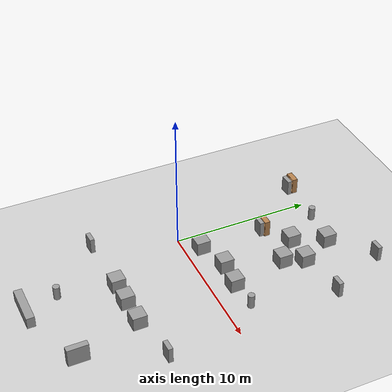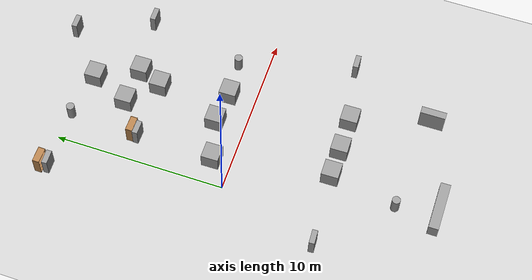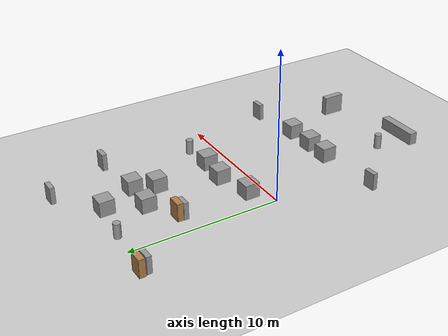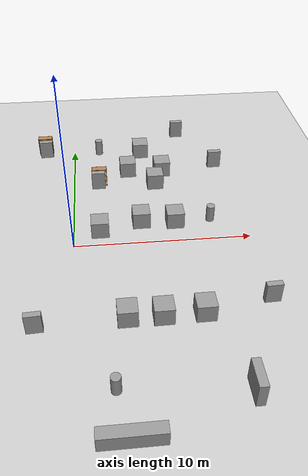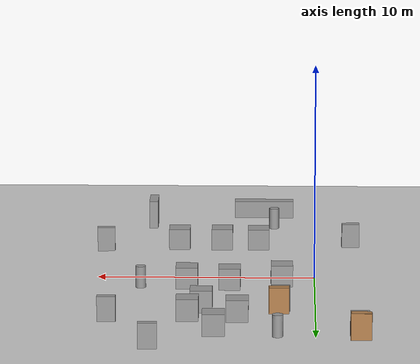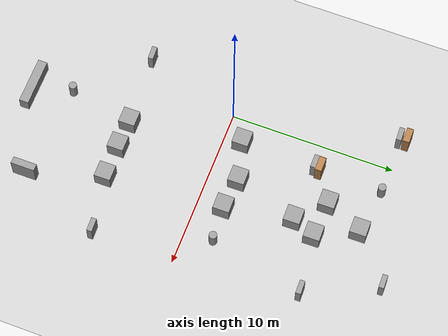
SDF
<sdf version="1.6">
 <world name="default">
  <light name="sun" type="directional">
   <pose>0 0 10 0 -0 0</pose>
   <diffuse>0.8 0.8 0.8 1</diffuse>
   <specular>0.2 0.2 0.2 1</specular>
   <attenuation>
    <range>1000</range>
    <constant>0.9</constant>
    <linear>0.01</linear>
    <quadratic>0.001</quadratic>
   </attenuation>
   <direction>-0.5 0.1 -0.9</direction>
  </light>
  <model name="ground_plane">
   <static>1</static>
   <link name="link">
    <collision name="collision">
     <geometry><plane><normal>0 0 1</normal><size>100 100</size></plane></geometry>
     <surface><friction><ode><mu>100</mu><mu2>50</mu2></ode></friction></surface>
    </collision>
    <visual name="visual">
     <cast_shadows>0</cast_shadows>
     <geometry><plane><normal>0 0 1</normal><size>100 100</size></plane></geometry>
     <material>
      <script><uri>file://media/materials/scripts/gazebo.material</uri><name>Gazebo/Grey</name></script>
     </material>
    </visual>
   </link>
  </model>
  <gravity>0 0 -9.8</gravity>
  <magnetic_field>6e-06 2.3e-05 -4.2e-05</magnetic_field>
  <atmosphere type="adiabatic"/>
  <physics name="default_physics" default="0" type="ode">
   <max_step_size>0.001</max_step_size>
   <real_time_factor>1</real_time_factor>
   <real_time_update_rate>1000</real_time_update_rate>
  </physics>
  <scene><ambient>0.4 0.4 0.4 1</ambient><background>0.7 0.7 0.7 1</background><shadows>1</shadows></scene>
  <spherical_coordinates>
   <surface_model>EARTH_WGS84</surface_model>
   <latitude_deg>0</latitude_deg>
   <longitude_deg>0</longitude_deg>
   <elevation>0</elevation>
   <heading_deg>0</heading_deg>
  </spherical_coordinates>
  <light name="user_directional_light_0" type="directional">
   <pose>2.09559 -1.53407 1 0 -0 0</pose>
   <diffuse>0.5 0.5 0.5 1</diffuse>
   <specular>0.1 0.1 0.1 1</specular>
   <direction>0.1 0.1 -0.9</direction>
   <attenuation>
    <range>20</range>
    <constant>0.5</constant>
    <linear>0.01</linear>
    <quadratic>0.001</quadratic>
   </attenuation>
  </light>
  <light name="user_point_light_0" type="point">
   <pose>-0.118109 0.866848 1 0 -0 0</pose>
   <diffuse>0.5 0.5 0.5 1</diffuse>
   <specular>0.1 0.1 0.1 1</specular>
   <attenuation>
    <range>20</range>
    <constant>0.5</constant>
    <linear>0.01</linear>
    <quadratic>0.001</quadratic>
   </attenuation>
   <cast_shadows>0</cast_shadows>
   <direction>0 0 -1</direction>
  </light>
  <light name="user_directional_light_1" type="directional">
   <pose>1.80972 -1.34508 1 0 -0 0</pose>
   <diffuse>0.5 0.5 0.5 1</diffuse>
   <specular>0.1 0.1 0.1 1</specular>
   <direction>0.1 0.1 -0.9</direction>
   <attenuation>
    <range>20</range>
    <constant>0.5</constant>
    <linear>0.01</linear>
    <quadratic>0.001</quadratic>
   </attenuation>
  </light>
  <light name="user_spot_light_0" type="spot">
   <pose>-0.568595 0.777163 1 0 -0 0</pose>
   <diffuse>0.5 0.5 0.5 1</diffuse>
   <specular>0.1 0.1 0.1 1</specular>
   <direction>0 0 -1</direction>
   <attenuation>
    <range>20</range>
    <constant>0.5</constant>
    <linear>0.01</linear>
    <quadratic>0.001</quadratic>
   </attenuation>
   <cast_shadows>0</cast_shadows>
   <spot><inner_angle>0.6</inner_angle><outer_angle>1</outer_angle><falloff>1</falloff></spot>
  </light>
  <model name="bookshelf_clone">
   <static>1</static>
   <link name="link">
    <inertial><mass>1</mass></inertial>
    <collision name="back">
     <pose>0 0.005 0.6 0 -0 0</pose>
     <geometry><box><size>0.9 0.01 1.2</size></box></geometry>
    </collision>
    <visual name="visual1">
     <pose>0 0.005 0.6 0 -0 0</pose>
     <geometry><box><size>0.9 0.01 1.2</size></box></geometry>
     <material>
      <script><uri>file://media/materials/scripts/gazebo.material</uri><name>Gazebo/Wood</name></script>
     </material>
    </visual>
    <collision name="left_side">
     <pose>0.45 -0.195 0.6 0 -0 0</pose>
     <geometry><box><size>0.02 0.4 1.2</size></box></geometry>
    </collision>
    <visual name="visual2">
     <pose>0.45 -0.195 0.6 0 -0 0</pose>
     <geometry><box><size>0.02 0.4 1.2</size></box></geometry>
     <material>
      <script><uri>file://media/materials/scripts/gazebo.material</uri><name>Gazebo/Wood</name></script>
     </material>
    </visual>
    <collision name="right_side">
     <pose>-0.45 -0.195 0.6 0 -0 0</pose>
     <geometry><box><size>0.02 0.4 1.2</size></box></geometry>
    </collision>
    <visual name="visual3">
     <pose>-0.45 -0.195 0.6 0 -0 0</pose>
     <geometry><box><size>0.02 0.4 1.2</size></box></geometry>
     <material>
      <script><uri>file://media/materials/scripts/gazebo.material</uri><name>Gazebo/Wood</name></script>
     </material>
    </visual>
    <collision name="bottom">
     <pose>0 -0.195 0.03 0 -0 0</pose>
     <geometry><box><size>0.88 0.4 0.06</size></box></geometry>
    </collision>
    <visual name="visual4">
     <pose>0 -0.195 0.03 0 -0 0</pose>
     <geometry><box><size>0.88 0.4 0.06</size></box></geometry>
     <material>
      <script><uri>file://media/materials/scripts/gazebo.material</uri><name>Gazebo/Wood</name></script>
     </material>
    </visual>
    <collision name="top">
     <pose>0 -0.195 1.19 0 -0 0</pose>
     <geometry><box><size>0.88 0.4 0.02</size></box></geometry>
    </collision>
    <visual name="visual5">
     <pose>0 -0.195 1.19 0 -0 0</pose>
     <geometry><box><size>0.88 0.4 0.02</size></box></geometry>
     <material>
      <script><uri>file://media/materials/scripts/gazebo.material</uri><name>Gazebo/Wood</name></script>
     </material>
    </visual>
    <collision name="low_shelf">
     <pose>0 -0.195 0.43 0 -0 0</pose>
     <geometry><box><size>0.88 0.4 0.02</size></box></geometry>
    </collision>
    <visual name="visual6">
     <pose>0 -0.195 0.43 0 -0 0</pose>
     <geometry><box><size>0.88 0.4 0.02</size></box></geometry>
     <material>
      <script><uri>file://media/materials/scripts/gazebo.material</uri><name>Gazebo/Wood</name></script>
     </material>
    </visual>
    <collision name="high_shelf">
     <pose>0 -0.195 0.8 0 -0 0</pose>
     <geometry><box><size>0.88 0.4 0.02</size></box></geometry>
    </collision>
    <visual name="visual7">
     <pose>0 -0.195 0.8 0 -0 0</pose>
     <geometry><box><size>0.88 0.4 0.02</size></box></geometry>
     <material>
      <script><uri>file://media/materials/scripts/gazebo.material</uri><name>Gazebo/Wood</name></script>
     </material>
    </visual>
   </link>
   <pose>1.61723 6.21333 0 0 -0 0</pose>
  </model>
  <model name="bookshelf_clone_1">
   <static>1</static>
   <link name="link">
    <inertial><mass>1</mass></inertial>
    <collision name="back">
     <pose>0 0.005 0.6 0 -0 0</pose>
     <geometry><box><size>0.9 0.01 1.2</size></box></geometry>
    </collision>
    <visual name="visual1">
     <pose>0 0.005 0.6 0 -0 0</pose>
     <geometry><box><size>0.9 0.01 1.2</size></box></geometry>
     <material>
      <script><uri>file://media/materials/scripts/gazebo.material</uri><name>Gazebo/Wood</name></script>
     </material>
    </visual>
    <collision name="left_side">
     <pose>0.45 -0.195 0.6 0 -0 0</pose>
     <geometry><box><size>0.02 0.4 1.2</size></box></geometry>
    </collision>
    <visual name="visual2">
     <pose>0.45 -0.195 0.6 0 -0 0</pose>
     <geometry><box><size>0.02 0.4 1.2</size></box></geometry>
     <material>
      <script><uri>file://media/materials/scripts/gazebo.material</uri><name>Gazebo/Wood</name></script>
     </material>
    </visual>
    <collision name="right_side">
     <pose>-0.45 -0.195 0.6 0 -0 0</pose>
     <geometry><box><size>0.02 0.4 1.2</size></box></geometry>
    </collision>
    <visual name="visual3">
     <pose>-0.45 -0.195 0.6 0 -0 0</pose>
     <geometry><box><size>0.02 0.4 1.2</size></box></geometry>
     <material>
      <script><uri>file://media/materials/scripts/gazebo.material</uri><name>Gazebo/Wood</name></script>
     </material>
    </visual>
    <collision name="bottom">
     <pose>0 -0.195 0.03 0 -0 0</pose>
     <geometry><box><size>0.88 0.4 0.06</size></box></geometry>
    </collision>
    <visual name="visual4">
     <pose>0 -0.195 0.03 0 -0 0</pose>
     <geometry><box><size>0.88 0.4 0.06</size></box></geometry>
     <material>
      <script><uri>file://media/materials/scripts/gazebo.material</uri><name>Gazebo/Wood</name></script>
     </material>
    </visual>
    <collision name="top">
     <pose>0 -0.195 1.19 0 -0 0</pose>
     <geometry><box><size>0.88 0.4 0.02</size></box></geometry>
    </collision>
    <visual name="visual5">
     <pose>0 -0.195 1.19 0 -0 0</pose>
     <geometry><box><size>0.88 0.4 0.02</size></box></geometry>
     <material>
      <script><uri>file://media/materials/scripts/gazebo.material</uri><name>Gazebo/Wood</name></script>
     </material>
    </visual>
    <collision name="low_shelf">
     <pose>0 -0.195 0.43 0 -0 0</pose>
     <geometry><box><size>0.88 0.4 0.02</size></box></geometry>
    </collision>
    <visual name="visual6">
     <pose>0 -0.195 0.43 0 -0 0</pose>
     <geometry><box><size>0.88 0.4 0.02</size></box></geometry>
     <material>
      <script><uri>file://media/materials/scripts/gazebo.material</uri><name>Gazebo/Wood</name></script>
     </material>
    </visual>
    <collision name="high_shelf">
     <pose>0 -0.195 0.8 0 -0 0</pose>
     <geometry><box><size>0.88 0.4 0.02</size></box></geometry>
    </collision>
    <visual name="visual7">
     <pose>0 -0.195 0.8 0 -0 0</pose>
     <geometry><box><size>0.88 0.4 0.02</size></box></geometry>
     <material>
      <script><uri>file://media/materials/scripts/gazebo.material</uri><name>Gazebo/Wood</name></script>
     </material>
    </visual>
   </link>
   <pose>-1.95504 10.3984 0 0 -0 0</pose>
  </model>
  <model name="unit_box">
   <pose>1.50781 1.11708 0.499995 0 -1e-05 0.011339</pose>
   <link name="link">
    <inertial>
     <mass>1</mass>
     <inertia>
      <ixx>0.166667</ixx>
      <ixy>0</ixy>
      <ixz>0</ixz>
      <iyy>0.166667</iyy>
      <iyz>0</iyz>
      <izz>0.166667</izz>
     </inertia>
    </inertial>
    <collision name="collision"><geometry><box><size>1 1 1</size></box></geometry></collision>
    <visual name="visual">
     <geometry><box><size>1 1 1</size></box></geometry>
     <material>
      <script><name>Gazebo/Grey</name><uri>file://media/materials/scripts/gazebo.material</uri></script>
     </material>
    </visual>
   </link>
  </model>
  <model name="unit_box_clone">
   <pose>3.90117 1.76013 0.499995 -0 1e-05 0.011339</pose>
   <link name="link">
    <inertial>
     <mass>1</mass>
     <inertia>
      <ixx>0.166667</ixx>
      <ixy>0</ixy>
      <ixz>0</ixz>
      <iyy>0.166667</iyy>
      <iyz>0</iyz>
      <izz>0.166667</izz>
     </inertia>
    </inertial>
    <collision name="collision"><geometry><box><size>1 1 1</size></box></geometry></collision>
    <visual name="visual">
     <geometry><box><size>1 1 1</size></box></geometry>
     <material>
      <script><name>Gazebo/Grey</name><uri>file://media/materials/scripts/gazebo.material</uri></script>
     </material>
    </visual>
   </link>
  </model>
  <model name="unit_box_clone_0">
   <pose>5.85639 1.57831 0.499995 -1e-05 -0 0.011339</pose>
   <link name="link">
    <inertial>
     <mass>1</mass>
     <inertia>
      <ixx>0.166667</ixx>
      <ixy>0</ixy>
      <ixz>0</ixz>
      <iyy>0.166667</iyy>
      <iyz>0</iyz>
      <izz>0.166667</izz>
     </inertia>
    </inertial>
    <collision name="collision"><geometry><box><size>1 1 1</size></box></geometry></collision>
    <visual name="visual">
     <geometry><box><size>1 1 1</size></box></geometry>
     <material>
      <script><name>Gazebo/Grey</name><uri>file://media/materials/scripts/gazebo.material</uri></script>
     </material>
    </visual>
   </link>
  </model>
  <model name="unit_box_clone_1">
   <pose>5.09767 5.62599 0.499995 -1e-05 -0 0.011339</pose>
   <link name="link">
    <inertial>
     <mass>1</mass>
     <inertia>
      <ixx>0.166667</ixx>
      <ixy>0</ixy>
      <ixz>0</ixz>
      <iyy>0.166667</iyy>
      <iyz>0</iyz>
      <izz>0.166667</izz>
     </inertia>
    </inertial>
    <collision name="collision"><geometry><box><size>1 1 1</size></box></geometry></collision>
    <visual name="visual">
     <geometry><box><size>1 1 1</size></box></geometry>
     <material>
      <script><name>Gazebo/Grey</name><uri>file://media/materials/scripts/gazebo.material</uri></script>
     </material>
    </visual>
   </link>
  </model>
  <model name="unit_box_clone_2">
   <pose>4.46432 9.44166 0.499995 -0 1e-05 0.011339</pose>
   <link name="link">
    <inertial>
     <mass>1</mass>
     <inertia>
      <ixx>0.166667</ixx>
      <ixy>0</ixy>
      <ixz>0</ixz>
      <iyy>0.166667</iyy>
      <iyz>0</iyz>
      <izz>0.166667</izz>
     </inertia>
    </inertial>
    <collision name="collision"><geometry><box><size>1 1 1</size></box></geometry></collision>
    <visual name="visual">
     <geometry><box><size>1 1 1</size></box></geometry>
     <material>
      <script><name>Gazebo/Grey</name><uri>file://media/materials/scripts/gazebo.material</uri></script>
     </material>
    </visual>
   </link>
  </model>
  <model name="unit_box_clone_3">
   <pose>2.64165 -5.60081 0.499995 -1e-05 -0 0.011339</pose>
   <link name="link">
    <inertial>
     <mass>1</mass>
     <inertia>
      <ixx>0.166667</ixx>
      <ixy>0</ixy>
      <ixz>0</ixz>
      <iyy>0.166667</iyy>
      <iyz>0</iyz>
      <izz>0.166667</izz>
     </inertia>
    </inertial>
    <collision name="collision"><geometry><box><size>1 1 1</size></box></geometry></collision>
    <visual name="visual">
     <geometry><box><size>1 1 1</size></box></geometry>
     <material>
      <script><name>Gazebo/Grey</name><uri>file://media/materials/scripts/gazebo.material</uri></script>
     </material>
    </visual>
   </link>
  </model>
  <model name="unit_box_clone_4">
   <pose>4.37603 -5.62358 0.499995 -0 1e-05 0.011339</pose>
   <link name="link">
    <inertial>
     <mass>1</mass>
     <inertia>
      <ixx>0.166667</ixx>
      <ixy>0</ixy>
      <ixz>0</ixz>
      <iyy>0.166667</iyy>
      <iyz>0</iyz>
      <izz>0.166667</izz>
     </inertia>
    </inertial>
    <collision name="collision"><geometry><box><size>1 1 1</size></box></geometry></collision>
    <visual name="visual">
     <geometry><box><size>1 1 1</size></box></geometry>
     <material>
      <script><name>Gazebo/Grey</name><uri>file://media/materials/scripts/gazebo.material</uri></script>
     </material>
    </visual>
   </link>
  </model>
  <model name="unit_box_clone_5">
   <pose>6.4085 -5.59776 0.499995 -1e-05 -0 0.011339</pose>
   <link name="link">
    <inertial>
     <mass>1</mass>
     <inertia>
      <ixx>0.166667</ixx>
      <ixy>0</ixy>
      <ixz>0</ixz>
      <iyy>0.166667</iyy>
      <iyz>0</iyz>
      <izz>0.166667</izz>
     </inertia>
    </inertial>
    <collision name="collision"><geometry><box><size>1 1 1</size></box></geometry></collision>
    <visual name="visual">
     <geometry><box><size>1 1 1</size></box></geometry>
     <material>
      <script><name>Gazebo/Grey</name><uri>file://media/materials/scripts/gazebo.material</uri></script>
     </material>
    </visual>
   </link>
  </model>
  <model name="unit_box_clone_6">
   <pose>3.46753 7.16068 0.499995 -0 1e-05 0.011339</pose>
   <link name="link">
    <inertial>
     <mass>1</mass>
     <inertia>
      <ixx>0.166667</ixx>
      <ixy>0</ixy>
      <ixz>0</ixz>
      <iyy>0.166667</iyy>
      <iyz>0</iyz>
      <izz>0.166667</izz>
     </inertia>
    </inertial>
    <collision name="collision"><geometry><box><size>1 1 1</size></box></geometry></collision>
    <visual name="visual">
     <geometry><box><size>1 1 1</size></box></geometry>
     <material>
      <script><name>Gazebo/Grey</name><uri>file://media/materials/scripts/gazebo.material</uri></script>
     </material>
    </visual>
   </link>
  </model>
  <model name="unit_box_clone_7">
   <pose>5.67887 7.03925 0.499995 -1e-05 -0 0.011339</pose>
   <link name="link">
    <inertial>
     <mass>1</mass>
     <inertia>
      <ixx>0.166667</ixx>
      <ixy>0</ixy>
      <ixz>0</ixz>
      <iyy>0.166667</iyy>
      <iyz>0</iyz>
      <izz>0.166667</izz>
     </inertia>
    </inertial>
    <collision name="collision"><geometry><box><size>1 1 1</size></box></geometry></collision>
    <visual name="visual">
     <geometry><box><size>1 1 1</size></box></geometry>
     <material>
      <script><name>Gazebo/Grey</name><uri>file://media/materials/scripts/gazebo.material</uri></script>
     </material>
    </visual>
   </link>
  </model>
  <model name="unit_cylinder">
   <pose>1.66767 9.84232 0.5 0 0 -2.6e-05</pose>
   <link name="link">
    <inertial>
     <mass>1</mass>
     <inertia><ixx>0.145833</ixx><ixy>0</ixy><ixz>0</ixz><iyy>0.145833</iyy><iyz>0</iyz><izz>0.125</izz></inertia>
    </inertial>
    <collision name="collision">
     <geometry><cylinder><radius>0.237498</radius><length>1</length></cylinder></geometry>
    </collision>
    <visual name="visual">
     <geometry><cylinder><radius>0.237498</radius><length>1</length></cylinder></geometry>
     <material>
      <script><name>Gazebo/Grey</name><uri>file://media/materials/scripts/gazebo.material</uri></script>
     </material>
    </visual>
   </link>
  </model>
  <model name="unit_cylinder_clone">
   <pose>1.91509 -9.52639 0.5 -0 -0 -3e-06</pose>
   <link name="link">
    <inertial>
     <mass>1</mass>
     <inertia><ixx>0.145833</ixx><ixy>0</ixy><ixz>0</ixz><iyy>0.145833</iyy><iyz>0</iyz><izz>0.125</izz></inertia>
    </inertial>
    <collision name="collision">
     <geometry><cylinder><radius>0.237498</radius><length>1</length></cylinder></geometry>
    </collision>
    <visual name="visual">
     <geometry><cylinder><radius>0.237498</radius><length>1</length></cylinder></geometry>
     <material>
      <script><name>Gazebo/Grey</name><uri>file://media/materials/scripts/gazebo.material</uri></script>
     </material>
    </visual>
   </link>
  </model>
  <model name="unit_cylinder_clone_0">
   <pose>7.96825 1.73746 0.499991 0 0 -8e-06</pose>
   <link name="link">
    <inertial>
     <mass>1</mass>
     <inertia><ixx>0.145833</ixx><ixy>0</ixy><ixz>0</ixz><iyy>0.145833</iyy><iyz>0</iyz><izz>0.125</izz></inertia>
    </inertial>
    <collision name="collision">
     <geometry><cylinder><radius>0.237498</radius><length>1</length></cylinder></geometry>
    </collision>
    <visual name="visual">
     <geometry><cylinder><radius>0.237498</radius><length>1</length></cylinder></geometry>
     <material>
      <script><name>Gazebo/Grey</name><uri>file://media/materials/scripts/gazebo.material</uri></script>
     </material>
    </visual>
   </link>
  </model>
  <model name="unit_box_0">
   <pose>2.43036 -11.879 0.41536 0 0.000119 0.002559</pose>
   <link name="link">
    <inertial>
     <mass>1</mass>
     <inertia>
      <ixx>0.166667</ixx>
      <ixy>0</ixy>
      <ixz>0</ixz>
      <iyy>0.166667</iyy>
      <iyz>0</iyz>
      <izz>0.166667</izz>
     </inertia>
    </inertial>
    <collision name="collision"><geometry><box><size>2.88836 0.575481 0.831062</size></box></geometry></collision>
    <visual name="visual">
     <geometry><box><size>2.88836 0.575481 0.831062</size></box></geometry>
     <material>
      <script><name>Gazebo/Grey</name><uri>file://media/materials/scripts/gazebo.material</uri></script>
     </material>
    </visual>
   </link>
  </model>
  <model name="unit_box_0_clone">
   <pose>7.82167 -10.0979 0.666396 0 6e-06 -1.569</pose>
   <link name="link">
    <inertial>
     <mass>1</mass>
     <inertia>
      <ixx>0.166667</ixx>
      <ixy>0</ixy>
      <ixz>0</ixz>
      <iyy>0.166667</iyy>
      <iyz>0</iyz>
      <izz>0.166667</izz>
     </inertia>
    </inertial>
    <collision name="collision"><geometry><box><size>1.4539 0.423408 1.3328</size></box></geometry></collision>
    <visual name="visual">
     <geometry><box><size>1.4539 0.423408 1.3328</size></box></geometry>
     <material>
      <script><name>Gazebo/Grey</name><uri>file://media/materials/scripts/gazebo.material</uri></script>
     </material>
    </visual>
   </link>
  </model>
  <model name="unit_box_0_clone_clone">
   <pose>9.9003 -4.97223 0.575278 0 0 -3.1007</pose>
   <link name="link">
    <inertial>
     <mass>1</mass>
     <inertia>
      <ixx>0.166667</ixx>
      <ixy>0</ixy>
      <ixz>0</ixz>
      <iyy>0.166667</iyy>
      <iyz>0</iyz>
      <izz>0.166667</izz>
     </inertia>
    </inertial>
    <collision name="collision"><geometry><box><size>0.830849 0.317735 1.15056</size></box></geometry></collision>
    <visual name="visual">
     <geometry><box><size>0.830849 0.317735 1.15056</size></box></geometry>
     <material>
      <script><name>Gazebo/Grey</name><uri>file://media/materials/scripts/gazebo.material</uri></script>
     </material>
    </visual>
   </link>
  </model>
  <model name="unit_box_0_clone_clone_clone">
   <pose>-1.75835 -5.86435 0.57528 -0 -1e-06 -3.08979</pose>
   <link name="link">
    <inertial>
     <mass>1</mass>
     <inertia>
      <ixx>0.166667</ixx>
      <ixy>0</ixy>
      <ixz>0</ixz>
      <iyy>0.166667</iyy>
      <iyz>0</iyz>
      <izz>0.166667</izz>
     </inertia>
    </inertial>
    <collision name="collision"><geometry><box><size>0.830849 0.317735 1.15056</size></box></geometry></collision>
    <visual name="visual">
     <geometry><box><size>0.830849 0.317735 1.15056</size></box></geometry>
     <material>
      <script><name>Gazebo/Grey</name><uri>file://media/materials/scripts/gazebo.material</uri></script>
     </material>
    </visual>
   </link>
  </model>
  <model name="unit_box_0_clone_clone_clone_0">
   <pose>-1.90443 9.75546 0.575277 0 -8e-06 -3.10742</pose>
   <link name="link">
    <inertial>
     <mass>1</mass>
     <inertia>
      <ixx>0.166667</ixx>
      <ixy>0</ixy>
      <ixz>0</ixz>
      <iyy>0.166667</iyy>
      <iyz>0</iyz>
      <izz>0.166667</izz>
     </inertia>
    </inertial>
    <collision name="collision"><geometry><box><size>0.830849 0.317735 1.15056</size></box></geometry></collision>
    <visual name="visual">
     <geometry><box><size>0.830849 0.317735 1.15056</size></box></geometry>
     <material>
      <script><name>Gazebo/Grey</name><uri>file://media/materials/scripts/gazebo.material</uri></script>
     </material>
    </visual>
   </link>
  </model>
  <model name="unit_box_0_clone_clone_clone_1">
   <pose>1.54254 5.65916 0.57528 -0 1e-06 3.14113</pose>
   <link name="link">
    <inertial>
     <mass>1</mass>
     <inertia>
      <ixx>0.166667</ixx>
      <ixy>0</ixy>
      <ixz>0</ixz>
      <iyy>0.166667</iyy>
      <iyz>0</iyz>
      <izz>0.166667</izz>
     </inertia>
    </inertial>
    <collision name="collision"><geometry><box><size>0.830849 0.317735 1.15056</size></box></geometry></collision>
    <visual name="visual">
     <geometry><box><size>0.830849 0.317735 1.15056</size></box></geometry>
     <material>
      <script><name>Gazebo/Grey</name><uri>file://media/materials/scripts/gazebo.material</uri></script>
     </material>
    </visual>
   </link>
  </model>
  <model name="unit_box_0_clone_clone_clone_1_clone">
   <pose>9.23761 7.50181 0.57528 0 0 -3.11953</pose>
   <link name="link">
    <inertial>
     <mass>1</mass>
     <inertia>
      <ixx>0.166667</ixx>
      <ixy>0</ixy>
      <ixz>0</ixz>
      <iyy>0.166667</iyy>
      <iyz>0</iyz>
      <izz>0.166667</izz>
     </inertia>
    </inertial>
    <collision name="collision"><geometry><box><size>0.830849 0.317735 1.15056</size></box></geometry></collision>
    <visual name="visual">
     <geometry><box><size>0.830849 0.317735 1.15056</size></box></geometry>
     <material>
      <script><name>Gazebo/Grey</name><uri>file://media/materials/scripts/gazebo.material</uri></script>
     </material>
    </visual>
   </link>
  </model>
  <model name="unit_box_0_clone_clone_clone_1_clone_0">
   <pose>7.24308 11.7654 0.57528 -0 1e-06 -3.11533</pose>
   <link name="link">
    <inertial>
     <mass>1</mass>
     <inertia>
      <ixx>0.166667</ixx>
      <ixy>0</ixy>
      <ixz>0</ixz>
      <iyy>0.166667</iyy>
      <iyz>0</iyz>
      <izz>0.166667</izz>
     </inertia>
    </inertial>
    <collision name="collision"><geometry><box><size>0.830849 0.317735 1.15056</size></box></geometry></collision>
    <visual name="visual">
     <geometry><box><size>0.830849 0.317735 1.15056</size></box></geometry>
     <material>
      <script><name>Gazebo/Grey</name><uri>file://media/materials/scripts/gazebo.material</uri></script>
     </material>
    </visual>
   </link>
  </model>
 </world>
</sdf>
